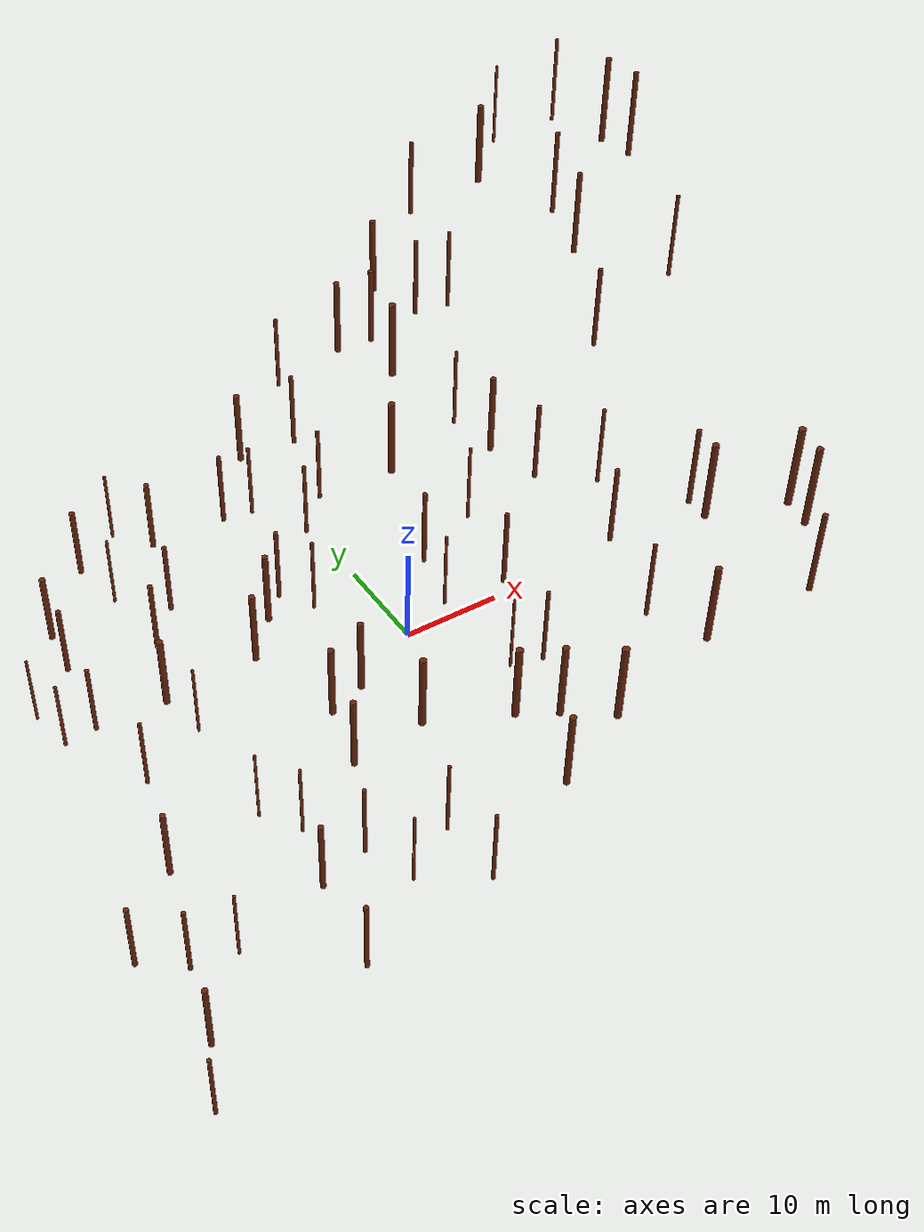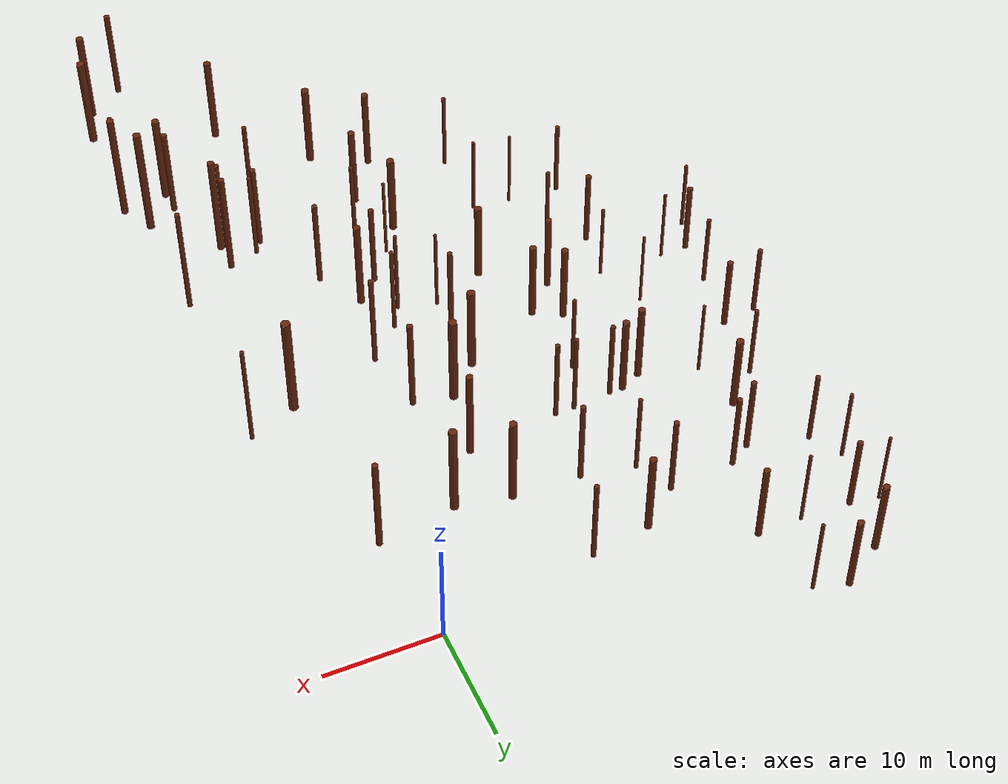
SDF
<sdf version="1.9">
 <world name="terrain_02">
  <plugin filename="gz-sim-physics-system" name="gz::sim::systems::Physics"/>
  <plugin filename="gz-sim-user-commands-system" name="gz::sim::systems::UserCommands"/>
  <plugin filename="gz-sim-scene-broadcaster-system" name="gz::sim::systems::SceneBroadcaster"/>
  <plugin filename="gz-sim-sensors-system" name="gz::sim::systems::Sensors">
   <render_engine>ogre2</render_engine>
  </plugin>
  <plugin filename="gz-sim-imu-system" name="gz::sim::systems::Imu"/>
  <plugin filename="gz-sim-navsat-system" name="gz::sim::systems::NavSat"/>
  <light type="directional" name="sun">
   <pose>0 -7000 7000 0 0 0</pose>
   <diffuse>0.9 0.88 0.82 1</diffuse>
   <specular>0 0 0 1</specular>
   <direction>0.0 0.6 -0.6</direction>
  </light>
  <scene>
   <ambient>0.45 0.48 0.55 1</ambient>
   <grid>false</grid>
   <origin_visual>false</origin_visual>
   <sky><time>10</time><sunrise>6</sunrise><sunset>20</sunset><clouds><speed>12</speed></clouds></sky>
  </scene>
  <physics name="1ms" type="ignored"><dart><collision_detector>bullet</collision_detector></dart></physics>
  <gravity>0 0 -9.8066</gravity>
  <spherical_coordinates>
   <surface_model>EARTH_WGS84</surface_model>
   <latitude_deg>46.508874731349465</latitude_deg>
   <longitude_deg>11.309725493061073</longitude_deg>
   <elevation>605.0</elevation>
  </spherical_coordinates>
  <model name="tree_0001">
   <static>true</static>
   <pose>-38.5882 -34.9558 3.0000 0 0 1.402474</pose>
   <link name="trunk">
    <visual name="trunk_visual">
     <geometry><cylinder><radius>0.1695</radius><length>7.0000</length></cylinder></geometry>
     <material>
      <ambient>0.22 0.08 0.025 1</ambient>
      <diffuse>0.40 0.14 0.04 1</diffuse>
      <specular>0.05 0.05 0.05 1</specular>
     </material>
    </visual>
    <collision name="trunk_collision">
     <geometry><cylinder><radius>0.1695</radius><length>7.0000</length></cylinder></geometry>
    </collision>
   </link>
  </model>
  <model name="tree_0002">
   <static>true</static>
   <pose>-25.6354 -35.1447 11.7345 0 0 0.187221</pose>
   <link name="trunk">
    <visual name="trunk_visual">
     <geometry><cylinder><radius>0.1959</radius><length>7.0000</length></cylinder></geometry>
     <material>
      <ambient>0.22 0.08 0.025 1</ambient>
      <diffuse>0.40 0.14 0.04 1</diffuse>
      <specular>0.05 0.05 0.05 1</specular>
     </material>
    </visual>
    <collision name="trunk_collision">
     <geometry><cylinder><radius>0.1959</radius><length>7.0000</length></cylinder></geometry>
    </collision>
   </link>
  </model>
  <model name="tree_0003">
   <static>true</static>
   <pose>-19.8354 -32.2829 14.7907 0 0 1.249334</pose>
   <link name="trunk">
    <visual name="trunk_visual">
     <geometry><cylinder><radius>0.1248</radius><length>7.0000</length></cylinder></geometry>
     <material>
      <ambient>0.22 0.08 0.025 1</ambient>
      <diffuse>0.40 0.14 0.04 1</diffuse>
      <specular>0.05 0.05 0.05 1</specular>
     </material>
    </visual>
    <collision name="trunk_collision">
     <geometry><cylinder><radius>0.1248</radius><length>7.0000</length></cylinder></geometry>
    </collision>
   </link>
  </model>
  <model name="tree_0004">
   <static>true</static>
   <pose>-15.7766 -36.6393 16.9756 0 0 3.702465</pose>
   <link name="trunk">
    <visual name="trunk_visual">
     <geometry><cylinder><radius>0.1597</radius><length>7.0000</length></cylinder></geometry>
     <material>
      <ambient>0.22 0.08 0.025 1</ambient>
      <diffuse>0.40 0.14 0.04 1</diffuse>
      <specular>0.05 0.05 0.05 1</specular>
     </material>
    </visual>
    <collision name="trunk_collision">
     <geometry><cylinder><radius>0.1597</radius><length>7.0000</length></cylinder></geometry>
    </collision>
   </link>
  </model>
  <model name="tree_0005">
   <static>true</static>
   <pose>-8.2167 -34.8226 21.1156 0 0 4.386539</pose>
   <link name="trunk">
    <visual name="trunk_visual">
     <geometry><cylinder><radius>0.2650</radius><length>7.0000</length></cylinder></geometry>
     <material>
      <ambient>0.22 0.08 0.025 1</ambient>
      <diffuse>0.40 0.14 0.04 1</diffuse>
      <specular>0.05 0.05 0.05 1</specular>
     </material>
    </visual>
    <collision name="trunk_collision">
     <geometry><cylinder><radius>0.2650</radius><length>7.0000</length></cylinder></geometry>
    </collision>
   </link>
  </model>
  <model name="tree_0006">
   <static>true</static>
   <pose>-2.9246 -33.6293 24.1662 0 0 2.114886</pose>
   <link name="trunk">
    <visual name="trunk_visual">
     <geometry><cylinder><radius>0.2923</radius><length>7.0000</length></cylinder></geometry>
     <material>
      <ambient>0.22 0.08 0.025 1</ambient>
      <diffuse>0.40 0.14 0.04 1</diffuse>
      <specular>0.05 0.05 0.05 1</specular>
     </material>
    </visual>
    <collision name="trunk_collision">
     <geometry><cylinder><radius>0.2923</radius><length>7.0000</length></cylinder></geometry>
    </collision>
   </link>
  </model>
  <model name="tree_0007">
   <static>true</static>
   <pose>4.4532 -34.1136 28.7677 0 0 3.793323</pose>
   <link name="trunk">
    <visual name="trunk_visual">
     <geometry><cylinder><radius>0.2725</radius><length>7.0000</length></cylinder></geometry>
     <material>
      <ambient>0.22 0.08 0.025 1</ambient>
      <diffuse>0.40 0.14 0.04 1</diffuse>
      <specular>0.05 0.05 0.05 1</specular>
     </material>
    </visual>
    <collision name="trunk_collision">
     <geometry><cylinder><radius>0.2725</radius><length>7.0000</length></cylinder></geometry>
    </collision>
   </link>
  </model>
  <model name="tree_0008">
   <static>true</static>
   <pose>10.8365 -37.1100 33.0162 0 0 6.114267</pose>
   <link name="trunk">
    <visual name="trunk_visual">
     <geometry><cylinder><radius>0.2165</radius><length>7.0000</length></cylinder></geometry>
     <material>
      <ambient>0.22 0.08 0.025 1</ambient>
      <diffuse>0.40 0.14 0.04 1</diffuse>
      <specular>0.05 0.05 0.05 1</specular>
     </material>
    </visual>
    <collision name="trunk_collision">
     <geometry><cylinder><radius>0.2165</radius><length>7.0000</length></cylinder></geometry>
    </collision>
   </link>
  </model>
  <model name="tree_0009">
   <static>true</static>
   <pose>13.8684 -32.8580 34.8509 0 0 3.886274</pose>
   <link name="trunk">
    <visual name="trunk_visual">
     <geometry><cylinder><radius>0.2693</radius><length>7.0000</length></cylinder></geometry>
     <material>
      <ambient>0.22 0.08 0.025 1</ambient>
      <diffuse>0.40 0.14 0.04 1</diffuse>
      <specular>0.05 0.05 0.05 1</specular>
     </material>
    </visual>
    <collision name="trunk_collision">
     <geometry><cylinder><radius>0.2693</radius><length>7.0000</length></cylinder></geometry>
    </collision>
   </link>
  </model>
  <model name="tree_0010">
   <static>true</static>
   <pose>-36.6053 -30.6144 4.5189 0 0 0.287923</pose>
   <link name="trunk">
    <visual name="trunk_visual">
     <geometry><cylinder><radius>0.2468</radius><length>7.0000</length></cylinder></geometry>
     <material>
      <ambient>0.22 0.08 0.025 1</ambient>
      <diffuse>0.40 0.14 0.04 1</diffuse>
      <specular>0.05 0.05 0.05 1</specular>
     </material>
    </visual>
    <collision name="trunk_collision">
     <geometry><cylinder><radius>0.2468</radius><length>7.0000</length></cylinder></geometry>
    </collision>
   </link>
  </model>
  <model name="tree_0011">
   <static>true</static>
   <pose>-32.0712 -26.9727 8.3033 0 0 1.462668</pose>
   <link name="trunk">
    <visual name="trunk_visual">
     <geometry><cylinder><radius>0.1344</radius><length>7.0000</length></cylinder></geometry>
     <material>
      <ambient>0.22 0.08 0.025 1</ambient>
      <diffuse>0.40 0.14 0.04 1</diffuse>
      <specular>0.05 0.05 0.05 1</specular>
     </material>
    </visual>
    <collision name="trunk_collision">
     <geometry><cylinder><radius>0.1344</radius><length>7.0000</length></cylinder></geometry>
    </collision>
   </link>
  </model>
  <model name="tree_0012">
   <static>true</static>
   <pose>-25.0001 -27.6530 12.3503 0 0 2.292308</pose>
   <link name="trunk">
    <visual name="trunk_visual">
     <geometry><cylinder><radius>0.2344</radius><length>7.0000</length></cylinder></geometry>
     <material>
      <ambient>0.22 0.08 0.025 1</ambient>
      <diffuse>0.40 0.14 0.04 1</diffuse>
      <specular>0.05 0.05 0.05 1</specular>
     </material>
    </visual>
    <collision name="trunk_collision">
     <geometry><cylinder><radius>0.2344</radius><length>7.0000</length></cylinder></geometry>
    </collision>
   </link>
  </model>
  <model name="tree_0013">
   <static>true</static>
   <pose>-21.2399 -27.6113 14.0783 0 0 5.885174</pose>
   <link name="trunk">
    <visual name="trunk_visual">
     <geometry><cylinder><radius>0.1681</radius><length>7.0000</length></cylinder></geometry>
     <material>
      <ambient>0.22 0.08 0.025 1</ambient>
      <diffuse>0.40 0.14 0.04 1</diffuse>
      <specular>0.05 0.05 0.05 1</specular>
     </material>
    </visual>
    <collision name="trunk_collision">
     <geometry><cylinder><radius>0.1681</radius><length>7.0000</length></cylinder></geometry>
    </collision>
   </link>
  </model>
  <model name="tree_0014">
   <static>true</static>
   <pose>-15.9386 -30.8077 16.6077 0 0 4.581239</pose>
   <link name="trunk">
    <visual name="trunk_visual">
     <geometry><cylinder><radius>0.1508</radius><length>7.0000</length></cylinder></geometry>
     <material>
      <ambient>0.22 0.08 0.025 1</ambient>
      <diffuse>0.40 0.14 0.04 1</diffuse>
      <specular>0.05 0.05 0.05 1</specular>
     </material>
    </visual>
    <collision name="trunk_collision">
     <geometry><cylinder><radius>0.1508</radius><length>7.0000</length></cylinder></geometry>
    </collision>
   </link>
  </model>
  <model name="tree_0015">
   <static>true</static>
   <pose>-7.2886 -26.9384 20.7216 0 0 4.021237</pose>
   <link name="trunk">
    <visual name="trunk_visual">
     <geometry><cylinder><radius>0.2981</radius><length>7.0000</length></cylinder></geometry>
     <material>
      <ambient>0.22 0.08 0.025 1</ambient>
      <diffuse>0.40 0.14 0.04 1</diffuse>
      <specular>0.05 0.05 0.05 1</specular>
     </material>
    </visual>
    <collision name="trunk_collision">
     <geometry><cylinder><radius>0.2981</radius><length>7.0000</length></cylinder></geometry>
    </collision>
   </link>
  </model>
  <model name="tree_0016">
   <static>true</static>
   <pose>-5.1459 -29.6742 22.1335 0 0 4.875751</pose>
   <link name="trunk">
    <visual name="trunk_visual">
     <geometry><cylinder><radius>0.2717</radius><length>7.0000</length></cylinder></geometry>
     <material>
      <ambient>0.22 0.08 0.025 1</ambient>
      <diffuse>0.40 0.14 0.04 1</diffuse>
      <specular>0.05 0.05 0.05 1</specular>
     </material>
    </visual>
    <collision name="trunk_collision">
     <geometry><cylinder><radius>0.2717</radius><length>7.0000</length></cylinder></geometry>
    </collision>
   </link>
  </model>
  <model name="tree_0017">
   <static>true</static>
   <pose>3.7671 -28.1035 26.8454 0 0 1.682266</pose>
   <link name="trunk">
    <visual name="trunk_visual">
     <geometry><cylinder><radius>0.1768</radius><length>7.0000</length></cylinder></geometry>
     <material>
      <ambient>0.22 0.08 0.025 1</ambient>
      <diffuse>0.40 0.14 0.04 1</diffuse>
      <specular>0.05 0.05 0.05 1</specular>
     </material>
    </visual>
    <collision name="trunk_collision">
     <geometry><cylinder><radius>0.1768</radius><length>7.0000</length></cylinder></geometry>
    </collision>
   </link>
  </model>
  <model name="tree_0018">
   <static>true</static>
   <pose>10.8616 -25.6100 31.6795 0 0 1.977179</pose>
   <link name="trunk">
    <visual name="trunk_visual">
     <geometry><cylinder><radius>0.2777</radius><length>7.0000</length></cylinder></geometry>
     <material>
      <ambient>0.22 0.08 0.025 1</ambient>
      <diffuse>0.40 0.14 0.04 1</diffuse>
      <specular>0.05 0.05 0.05 1</specular>
     </material>
    </visual>
    <collision name="trunk_collision">
     <geometry><cylinder><radius>0.2777</radius><length>7.0000</length></cylinder></geometry>
    </collision>
   </link>
  </model>
  <model name="tree_0019">
   <static>true</static>
   <pose>14.5764 -30.2732 34.6691 0 0 2.883051</pose>
   <link name="trunk">
    <visual name="trunk_visual">
     <geometry><cylinder><radius>0.2846</radius><length>7.0000</length></cylinder></geometry>
     <material>
      <ambient>0.22 0.08 0.025 1</ambient>
      <diffuse>0.40 0.14 0.04 1</diffuse>
      <specular>0.05 0.05 0.05 1</specular>
     </material>
    </visual>
    <collision name="trunk_collision">
     <geometry><cylinder><radius>0.2846</radius><length>7.0000</length></cylinder></geometry>
    </collision>
   </link>
  </model>
  <model name="tree_0020">
   <static>true</static>
   <pose>-38.4405 -21.1114 4.4851 0 0 1.650854</pose>
   <link name="trunk">
    <visual name="trunk_visual">
     <geometry><cylinder><radius>0.2210</radius><length>7.0000</length></cylinder></geometry>
     <material>
      <ambient>0.22 0.08 0.025 1</ambient>
      <diffuse>0.40 0.14 0.04 1</diffuse>
      <specular>0.05 0.05 0.05 1</specular>
     </material>
    </visual>
    <collision name="trunk_collision">
     <geometry><cylinder><radius>0.2210</radius><length>7.0000</length></cylinder></geometry>
    </collision>
   </link>
  </model>
  <model name="tree_0021">
   <static>true</static>
   <pose>-35.3000 -24.7750 6.0681 0 0 1.378033</pose>
   <link name="trunk">
    <visual name="trunk_visual">
     <geometry><cylinder><radius>0.1919</radius><length>7.0000</length></cylinder></geometry>
     <material>
      <ambient>0.22 0.08 0.025 1</ambient>
      <diffuse>0.40 0.14 0.04 1</diffuse>
      <specular>0.05 0.05 0.05 1</specular>
     </material>
    </visual>
    <collision name="trunk_collision">
     <geometry><cylinder><radius>0.1919</radius><length>7.0000</length></cylinder></geometry>
    </collision>
   </link>
  </model>
  <model name="tree_0022">
   <static>true</static>
   <pose>-23.9130 -22.6469 13.0746 0 0 0.296041</pose>
   <link name="trunk">
    <visual name="trunk_visual">
     <geometry><cylinder><radius>0.1364</radius><length>7.0000</length></cylinder></geometry>
     <material>
      <ambient>0.22 0.08 0.025 1</ambient>
      <diffuse>0.40 0.14 0.04 1</diffuse>
      <specular>0.05 0.05 0.05 1</specular>
     </material>
    </visual>
    <collision name="trunk_collision">
     <geometry><cylinder><radius>0.1364</radius><length>7.0000</length></cylinder></geometry>
    </collision>
   </link>
  </model>
  <model name="tree_0023">
   <static>true</static>
   <pose>-18.1305 -20.8233 15.6238 0 0 2.652509</pose>
   <link name="trunk">
    <visual name="trunk_visual">
     <geometry><cylinder><radius>0.2626</radius><length>7.0000</length></cylinder></geometry>
     <material>
      <ambient>0.22 0.08 0.025 1</ambient>
      <diffuse>0.40 0.14 0.04 1</diffuse>
      <specular>0.05 0.05 0.05 1</specular>
     </material>
    </visual>
    <collision name="trunk_collision">
     <geometry><cylinder><radius>0.2626</radius><length>7.0000</length></cylinder></geometry>
    </collision>
   </link>
  </model>
  <model name="tree_0024">
   <static>true</static>
   <pose>-12.4932 -21.8479 18.0424 0 0 3.324523</pose>
   <link name="trunk">
    <visual name="trunk_visual">
     <geometry><cylinder><radius>0.2993</radius><length>7.0000</length></cylinder></geometry>
     <material>
      <ambient>0.22 0.08 0.025 1</ambient>
      <diffuse>0.40 0.14 0.04 1</diffuse>
      <specular>0.05 0.05 0.05 1</specular>
     </material>
    </visual>
    <collision name="trunk_collision">
     <geometry><cylinder><radius>0.2993</radius><length>7.0000</length></cylinder></geometry>
    </collision>
   </link>
  </model>
  <model name="tree_0025">
   <static>true</static>
   <pose>-5.3000 -23.3278 21.9161 0 0 4.528429</pose>
   <link name="trunk">
    <visual name="trunk_visual">
     <geometry><cylinder><radius>0.1221</radius><length>7.0000</length></cylinder></geometry>
     <material>
      <ambient>0.22 0.08 0.025 1</ambient>
      <diffuse>0.40 0.14 0.04 1</diffuse>
      <specular>0.05 0.05 0.05 1</specular>
     </material>
    </visual>
    <collision name="trunk_collision">
     <geometry><cylinder><radius>0.1221</radius><length>7.0000</length></cylinder></geometry>
    </collision>
   </link>
  </model>
  <model name="tree_0026">
   <static>true</static>
   <pose>-3.3325 -24.8669 22.9963 0 0 4.027282</pose>
   <link name="trunk">
    <visual name="trunk_visual">
     <geometry><cylinder><radius>0.1680</radius><length>7.0000</length></cylinder></geometry>
     <material>
      <ambient>0.22 0.08 0.025 1</ambient>
      <diffuse>0.40 0.14 0.04 1</diffuse>
      <specular>0.05 0.05 0.05 1</specular>
     </material>
    </visual>
    <collision name="trunk_collision">
     <geometry><cylinder><radius>0.1680</radius><length>7.0000</length></cylinder></geometry>
    </collision>
   </link>
  </model>
  <model name="tree_0027">
   <static>true</static>
   <pose>5.3327 -21.2322 28.6359 0 0 5.993002</pose>
   <link name="trunk">
    <visual name="trunk_visual">
     <geometry><cylinder><radius>0.2017</radius><length>7.0000</length></cylinder></geometry>
     <material>
      <ambient>0.22 0.08 0.025 1</ambient>
      <diffuse>0.40 0.14 0.04 1</diffuse>
      <specular>0.05 0.05 0.05 1</specular>
     </material>
    </visual>
    <collision name="trunk_collision">
     <geometry><cylinder><radius>0.2017</radius><length>7.0000</length></cylinder></geometry>
    </collision>
   </link>
  </model>
  <model name="tree_0028">
   <static>true</static>
   <pose>10.8117 -23.7099 31.8290 0 0 1.122503</pose>
   <link name="trunk">
    <visual name="trunk_visual">
     <geometry><cylinder><radius>0.2101</radius><length>7.0000</length></cylinder></geometry>
     <material>
      <ambient>0.22 0.08 0.025 1</ambient>
      <diffuse>0.40 0.14 0.04 1</diffuse>
      <specular>0.05 0.05 0.05 1</specular>
     </material>
    </visual>
    <collision name="trunk_collision">
     <geometry><cylinder><radius>0.2101</radius><length>7.0000</length></cylinder></geometry>
    </collision>
   </link>
  </model>
  <model name="tree_0029">
   <static>true</static>
   <pose>-33.1923 -17.3385 8.2768 0 0 3.389018</pose>
   <link name="trunk">
    <visual name="trunk_visual">
     <geometry><cylinder><radius>0.2573</radius><length>7.0000</length></cylinder></geometry>
     <material>
      <ambient>0.22 0.08 0.025 1</ambient>
      <diffuse>0.40 0.14 0.04 1</diffuse>
      <specular>0.05 0.05 0.05 1</specular>
     </material>
    </visual>
    <collision name="trunk_collision">
     <geometry><cylinder><radius>0.2573</radius><length>7.0000</length></cylinder></geometry>
    </collision>
   </link>
  </model>
  <model name="tree_0030">
   <static>true</static>
   <pose>-25.8601 -19.0292 12.3881 0 0 2.036733</pose>
   <link name="trunk">
    <visual name="trunk_visual">
     <geometry><cylinder><radius>0.1201</radius><length>7.0000</length></cylinder></geometry>
     <material>
      <ambient>0.22 0.08 0.025 1</ambient>
      <diffuse>0.40 0.14 0.04 1</diffuse>
      <specular>0.05 0.05 0.05 1</specular>
     </material>
    </visual>
    <collision name="trunk_collision">
     <geometry><cylinder><radius>0.1201</radius><length>7.0000</length></cylinder></geometry>
    </collision>
   </link>
  </model>
  <model name="tree_0031">
   <static>true</static>
   <pose>-17.3000 -16.0483 16.7311 0 0 5.225509</pose>
   <link name="trunk">
    <visual name="trunk_visual">
     <geometry><cylinder><radius>0.2782</radius><length>7.0000</length></cylinder></geometry>
     <material>
      <ambient>0.22 0.08 0.025 1</ambient>
      <diffuse>0.40 0.14 0.04 1</diffuse>
      <specular>0.05 0.05 0.05 1</specular>
     </material>
    </visual>
    <collision name="trunk_collision">
     <geometry><cylinder><radius>0.2782</radius><length>7.0000</length></cylinder></geometry>
    </collision>
   </link>
  </model>
  <model name="tree_0032">
   <static>true</static>
   <pose>-14.5443 -15.9637 18.1004 0 0 5.949859</pose>
   <link name="trunk">
    <visual name="trunk_visual">
     <geometry><cylinder><radius>0.2780</radius><length>7.0000</length></cylinder></geometry>
     <material>
      <ambient>0.22 0.08 0.025 1</ambient>
      <diffuse>0.40 0.14 0.04 1</diffuse>
      <specular>0.05 0.05 0.05 1</specular>
     </material>
    </visual>
    <collision name="trunk_collision">
     <geometry><cylinder><radius>0.2780</radius><length>7.0000</length></cylinder></geometry>
    </collision>
   </link>
  </model>
  <model name="tree_0033">
   <static>true</static>
   <pose>-6.3188 -15.4273 22.8901 0 0 4.779004</pose>
   <link name="trunk">
    <visual name="trunk_visual">
     <geometry><cylinder><radius>0.1325</radius><length>7.0000</length></cylinder></geometry>
     <material>
      <ambient>0.22 0.08 0.025 1</ambient>
      <diffuse>0.40 0.14 0.04 1</diffuse>
      <specular>0.05 0.05 0.05 1</specular>
     </material>
    </visual>
    <collision name="trunk_collision">
     <geometry><cylinder><radius>0.1325</radius><length>7.0000</length></cylinder></geometry>
    </collision>
   </link>
  </model>
  <model name="tree_0034">
   <static>true</static>
   <pose>-2.1959 -17.6533 24.9886 0 0 3.454518</pose>
   <link name="trunk">
    <visual name="trunk_visual">
     <geometry><cylinder><radius>0.2056</radius><length>7.0000</length></cylinder></geometry>
     <material>
      <ambient>0.22 0.08 0.025 1</ambient>
      <diffuse>0.40 0.14 0.04 1</diffuse>
      <specular>0.05 0.05 0.05 1</specular>
     </material>
    </visual>
    <collision name="trunk_collision">
     <geometry><cylinder><radius>0.2056</radius><length>7.0000</length></cylinder></geometry>
    </collision>
   </link>
  </model>
  <model name="tree_0035">
   <static>true</static>
   <pose>3.3166 -13.6100 30.6855 0 0 1.330767</pose>
   <link name="trunk">
    <visual name="trunk_visual">
     <geometry><cylinder><radius>0.1962</radius><length>7.0000</length></cylinder></geometry>
     <material>
      <ambient>0.22 0.08 0.025 1</ambient>
      <diffuse>0.40 0.14 0.04 1</diffuse>
      <specular>0.05 0.05 0.05 1</specular>
     </material>
    </visual>
    <collision name="trunk_collision">
     <geometry><cylinder><radius>0.1962</radius><length>7.0000</length></cylinder></geometry>
    </collision>
   </link>
  </model>
  <model name="tree_0036">
   <static>true</static>
   <pose>6.7000 -17.4009 31.3919 0 0 1.958571</pose>
   <link name="trunk">
    <visual name="trunk_visual">
     <geometry><cylinder><radius>0.1562</radius><length>7.0000</length></cylinder></geometry>
     <material>
      <ambient>0.22 0.08 0.025 1</ambient>
      <diffuse>0.40 0.14 0.04 1</diffuse>
      <specular>0.05 0.05 0.05 1</specular>
     </material>
    </visual>
    <collision name="trunk_collision">
     <geometry><cylinder><radius>0.1562</radius><length>7.0000</length></cylinder></geometry>
    </collision>
   </link>
  </model>
  <model name="tree_0037">
   <static>true</static>
   <pose>-31.2660 -9.6267 10.4135 0 0 3.696453</pose>
   <link name="trunk">
    <visual name="trunk_visual">
     <geometry><cylinder><radius>0.1809</radius><length>7.0000</length></cylinder></geometry>
     <material>
      <ambient>0.22 0.08 0.025 1</ambient>
      <diffuse>0.40 0.14 0.04 1</diffuse>
      <specular>0.05 0.05 0.05 1</specular>
     </material>
    </visual>
    <collision name="trunk_collision">
     <geometry><cylinder><radius>0.1809</radius><length>7.0000</length></cylinder></geometry>
    </collision>
   </link>
  </model>
  <model name="tree_0038">
   <static>true</static>
   <pose>-26.1242 -9.2104 13.3301 0 0 3.965337</pose>
   <link name="trunk">
    <visual name="trunk_visual">
     <geometry><cylinder><radius>0.1328</radius><length>7.0000</length></cylinder></geometry>
     <material>
      <ambient>0.22 0.08 0.025 1</ambient>
      <diffuse>0.40 0.14 0.04 1</diffuse>
      <specular>0.05 0.05 0.05 1</specular>
     </material>
    </visual>
    <collision name="trunk_collision">
     <geometry><cylinder><radius>0.1328</radius><length>7.0000</length></cylinder></geometry>
    </collision>
   </link>
  </model>
  <model name="tree_0039">
   <static>true</static>
   <pose>-19.7270 -7.6100 16.9255 0 0 0.445210</pose>
   <link name="trunk">
    <visual name="trunk_visual">
     <geometry><cylinder><radius>0.2747</radius><length>7.0000</length></cylinder></geometry>
     <material>
      <ambient>0.22 0.08 0.025 1</ambient>
      <diffuse>0.40 0.14 0.04 1</diffuse>
      <specular>0.05 0.05 0.05 1</specular>
     </material>
    </visual>
    <collision name="trunk_collision">
     <geometry><cylinder><radius>0.2747</radius><length>7.0000</length></cylinder></geometry>
    </collision>
   </link>
  </model>
  <model name="tree_0040">
   <static>true</static>
   <pose>-14.0761 -7.6445 20.0691 0 0 0.831340</pose>
   <link name="trunk">
    <visual name="trunk_visual">
     <geometry><cylinder><radius>0.1586</radius><length>7.0000</length></cylinder></geometry>
     <material>
      <ambient>0.22 0.08 0.025 1</ambient>
      <diffuse>0.40 0.14 0.04 1</diffuse>
      <specular>0.05 0.05 0.05 1</specular>
     </material>
    </visual>
    <collision name="trunk_collision">
     <geometry><cylinder><radius>0.1586</radius><length>7.0000</length></cylinder></geometry>
    </collision>
   </link>
  </model>
  <model name="tree_0041">
   <static>true</static>
   <pose>-5.9085 -11.6357 24.4364 0 0 4.929909</pose>
   <link name="trunk">
    <visual name="trunk_visual">
     <geometry><cylinder><radius>0.2051</radius><length>7.0000</length></cylinder></geometry>
     <material>
      <ambient>0.22 0.08 0.025 1</ambient>
      <diffuse>0.40 0.14 0.04 1</diffuse>
      <specular>0.05 0.05 0.05 1</specular>
     </material>
    </visual>
    <collision name="trunk_collision">
     <geometry><cylinder><radius>0.2051</radius><length>7.0000</length></cylinder></geometry>
    </collision>
   </link>
  </model>
  <model name="tree_0042">
   <static>true</static>
   <pose>-1.8405 -11.8260 27.4383 0 0 2.708374</pose>
   <link name="trunk">
    <visual name="trunk_visual">
     <geometry><cylinder><radius>0.1374</radius><length>7.0000</length></cylinder></geometry>
     <material>
      <ambient>0.22 0.08 0.025 1</ambient>
      <diffuse>0.40 0.14 0.04 1</diffuse>
      <specular>0.05 0.05 0.05 1</specular>
     </material>
    </visual>
    <collision name="trunk_collision">
     <geometry><cylinder><radius>0.1374</radius><length>7.0000</length></cylinder></geometry>
    </collision>
   </link>
  </model>
  <model name="tree_0043">
   <static>true</static>
   <pose>1.7100 -9.5736 31.4714 0 0 4.230874</pose>
   <link name="trunk">
    <visual name="trunk_visual">
     <geometry><cylinder><radius>0.2512</radius><length>7.0000</length></cylinder></geometry>
     <material>
      <ambient>0.22 0.08 0.025 1</ambient>
      <diffuse>0.40 0.14 0.04 1</diffuse>
      <specular>0.05 0.05 0.05 1</specular>
     </material>
    </visual>
    <collision name="trunk_collision">
     <geometry><cylinder><radius>0.2512</radius><length>7.0000</length></cylinder></geometry>
    </collision>
   </link>
  </model>
  <model name="tree_0044">
   <static>true</static>
   <pose>10.6059 -10.7004 39.1684 0 0 2.131901</pose>
   <link name="trunk">
    <visual name="trunk_visual">
     <geometry><cylinder><radius>0.1925</radius><length>7.0000</length></cylinder></geometry>
     <material>
      <ambient>0.22 0.08 0.025 1</ambient>
      <diffuse>0.40 0.14 0.04 1</diffuse>
      <specular>0.05 0.05 0.05 1</specular>
     </material>
    </visual>
    <collision name="trunk_collision">
     <geometry><cylinder><radius>0.1925</radius><length>7.0000</length></cylinder></geometry>
    </collision>
   </link>
  </model>
  <model name="tree_0045">
   <static>true</static>
   <pose>16.6762 -11.7651 44.2585 0 0 2.818722</pose>
   <link name="trunk">
    <visual name="trunk_visual">
     <geometry><cylinder><radius>0.1542</radius><length>7.0000</length></cylinder></geometry>
     <material>
      <ambient>0.22 0.08 0.025 1</ambient>
      <diffuse>0.40 0.14 0.04 1</diffuse>
      <specular>0.05 0.05 0.05 1</specular>
     </material>
    </visual>
    <collision name="trunk_collision">
     <geometry><cylinder><radius>0.1542</radius><length>7.0000</length></cylinder></geometry>
    </collision>
   </link>
  </model>
  <model name="tree_0046">
   <static>true</static>
   <pose>-32.2945 -1.6100 10.0831 0 0 5.412016</pose>
   <link name="trunk">
    <visual name="trunk_visual">
     <geometry><cylinder><radius>0.1998</radius><length>7.0000</length></cylinder></geometry>
     <material>
      <ambient>0.22 0.08 0.025 1</ambient>
      <diffuse>0.40 0.14 0.04 1</diffuse>
      <specular>0.05 0.05 0.05 1</specular>
     </material>
    </visual>
    <collision name="trunk_collision">
     <geometry><cylinder><radius>0.1998</radius><length>7.0000</length></cylinder></geometry>
    </collision>
   </link>
  </model>
  <model name="tree_0047">
   <static>true</static>
   <pose>-26.9125 -4.8104 13.2591 0 0 5.252916</pose>
   <link name="trunk">
    <visual name="trunk_visual">
     <geometry><cylinder><radius>0.2999</radius><length>7.0000</length></cylinder></geometry>
     <material>
      <ambient>0.22 0.08 0.025 1</ambient>
      <diffuse>0.40 0.14 0.04 1</diffuse>
      <specular>0.05 0.05 0.05 1</specular>
     </material>
    </visual>
    <collision name="trunk_collision">
     <geometry><cylinder><radius>0.2999</radius><length>7.0000</length></cylinder></geometry>
    </collision>
   </link>
  </model>
  <model name="tree_0048">
   <static>true</static>
   <pose>-17.3000 -5.4943 18.4860 0 0 1.044964</pose>
   <link name="trunk">
    <visual name="trunk_visual">
     <geometry><cylinder><radius>0.2728</radius><length>7.0000</length></cylinder></geometry>
     <material>
      <ambient>0.22 0.08 0.025 1</ambient>
      <diffuse>0.40 0.14 0.04 1</diffuse>
      <specular>0.05 0.05 0.05 1</specular>
     </material>
    </visual>
    <collision name="trunk_collision">
     <geometry><cylinder><radius>0.2728</radius><length>7.0000</length></cylinder></geometry>
    </collision>
   </link>
  </model>
  <model name="tree_0049">
   <static>true</static>
   <pose>-15.6814 -4.4850 19.6154 0 0 0.368417</pose>
   <link name="trunk">
    <visual name="trunk_visual">
     <geometry><cylinder><radius>0.1922</radius><length>7.0000</length></cylinder></geometry>
     <material>
      <ambient>0.22 0.08 0.025 1</ambient>
      <diffuse>0.40 0.14 0.04 1</diffuse>
      <specular>0.05 0.05 0.05 1</specular>
     </material>
    </visual>
    <collision name="trunk_collision">
     <geometry><cylinder><radius>0.1922</radius><length>7.0000</length></cylinder></geometry>
    </collision>
   </link>
  </model>
  <model name="tree_0050">
   <static>true</static>
   <pose>-11.3000 -1.6100 22.7024 0 0 4.926461</pose>
   <link name="trunk">
    <visual name="trunk_visual">
     <geometry><cylinder><radius>0.1677</radius><length>7.0000</length></cylinder></geometry>
     <material>
      <ambient>0.22 0.08 0.025 1</ambient>
      <diffuse>0.40 0.14 0.04 1</diffuse>
      <specular>0.05 0.05 0.05 1</specular>
     </material>
    </visual>
    <collision name="trunk_collision">
     <geometry><cylinder><radius>0.1677</radius><length>7.0000</length></cylinder></geometry>
    </collision>
   </link>
  </model>
  <model name="tree_0051">
   <static>true</static>
   <pose>-4.3142 -4.0249 27.8948 0 0 6.254425</pose>
   <link name="trunk">
    <visual name="trunk_visual">
     <geometry><cylinder><radius>0.2923</radius><length>7.0000</length></cylinder></geometry>
     <material>
      <ambient>0.22 0.08 0.025 1</ambient>
      <diffuse>0.40 0.14 0.04 1</diffuse>
      <specular>0.05 0.05 0.05 1</specular>
     </material>
    </visual>
    <collision name="trunk_collision">
     <geometry><cylinder><radius>0.2923</radius><length>7.0000</length></cylinder></geometry>
    </collision>
   </link>
  </model>
  <model name="tree_0052">
   <static>true</static>
   <pose>0.7094 -5.7030 32.1003 0 0 1.864270</pose>
   <link name="trunk">
    <visual name="trunk_visual">
     <geometry><cylinder><radius>0.1479</radius><length>7.0000</length></cylinder></geometry>
     <material>
      <ambient>0.22 0.08 0.025 1</ambient>
      <diffuse>0.40 0.14 0.04 1</diffuse>
      <specular>0.05 0.05 0.05 1</specular>
     </material>
    </visual>
    <collision name="trunk_collision">
     <geometry><cylinder><radius>0.1479</radius><length>7.0000</length></cylinder></geometry>
    </collision>
   </link>
  </model>
  <model name="tree_0053">
   <static>true</static>
   <pose>12.2807 -5.1240 44.3408 0 0 4.699669</pose>
   <link name="trunk">
    <visual name="trunk_visual">
     <geometry><cylinder><radius>0.2176</radius><length>7.0000</length></cylinder></geometry>
     <material>
      <ambient>0.22 0.08 0.025 1</ambient>
      <diffuse>0.40 0.14 0.04 1</diffuse>
      <specular>0.05 0.05 0.05 1</specular>
     </material>
    </visual>
    <collision name="trunk_collision">
     <geometry><cylinder><radius>0.2176</radius><length>7.0000</length></cylinder></geometry>
    </collision>
   </link>
  </model>
  <model name="tree_0054">
   <static>true</static>
   <pose>18.1804 -3.6787 50.6803 0 0 5.357797</pose>
   <link name="trunk">
    <visual name="trunk_visual">
     <geometry><cylinder><radius>0.2105</radius><length>7.0000</length></cylinder></geometry>
     <material>
      <ambient>0.22 0.08 0.025 1</ambient>
      <diffuse>0.40 0.14 0.04 1</diffuse>
      <specular>0.05 0.05 0.05 1</specular>
     </material>
    </visual>
    <collision name="trunk_collision">
     <geometry><cylinder><radius>0.2105</radius><length>7.0000</length></cylinder></geometry>
    </collision>
   </link>
  </model>
  <model name="tree_0055">
   <static>true</static>
   <pose>-35.5037 4.3900 7.6959 0 0 1.167573</pose>
   <link name="trunk">
    <visual name="trunk_visual">
     <geometry><cylinder><radius>0.1344</radius><length>7.0000</length></cylinder></geometry>
     <material>
      <ambient>0.22 0.08 0.025 1</ambient>
      <diffuse>0.40 0.14 0.04 1</diffuse>
      <specular>0.05 0.05 0.05 1</specular>
     </material>
    </visual>
    <collision name="trunk_collision">
     <geometry><cylinder><radius>0.1344</radius><length>7.0000</length></cylinder></geometry>
    </collision>
   </link>
  </model>
  <model name="tree_0056">
   <static>true</static>
   <pose>-34.7804 -0.2965 8.2779 0 0 0.753270</pose>
   <link name="trunk">
    <visual name="trunk_visual">
     <geometry><cylinder><radius>0.1623</radius><length>7.0000</length></cylinder></geometry>
     <material>
      <ambient>0.22 0.08 0.025 1</ambient>
      <diffuse>0.40 0.14 0.04 1</diffuse>
      <specular>0.05 0.05 0.05 1</specular>
     </material>
    </visual>
    <collision name="trunk_collision">
     <geometry><cylinder><radius>0.1623</radius><length>7.0000</length></cylinder></geometry>
    </collision>
   </link>
  </model>
  <model name="tree_0057">
   <static>true</static>
   <pose>-25.1396 0.4336 14.4230 0 0 3.891689</pose>
   <link name="trunk">
    <visual name="trunk_visual">
     <geometry><cylinder><radius>0.2270</radius><length>7.0000</length></cylinder></geometry>
     <material>
      <ambient>0.22 0.08 0.025 1</ambient>
      <diffuse>0.40 0.14 0.04 1</diffuse>
      <specular>0.05 0.05 0.05 1</specular>
     </material>
    </visual>
    <collision name="trunk_collision">
     <geometry><cylinder><radius>0.2270</radius><length>7.0000</length></cylinder></geometry>
    </collision>
   </link>
  </model>
  <model name="tree_0058">
   <static>true</static>
   <pose>-22.6139 2.6768 15.8873 0 0 5.872933</pose>
   <link name="trunk">
    <visual name="trunk_visual">
     <geometry><cylinder><radius>0.2141</radius><length>7.0000</length></cylinder></geometry>
     <material>
      <ambient>0.22 0.08 0.025 1</ambient>
      <diffuse>0.40 0.14 0.04 1</diffuse>
      <specular>0.05 0.05 0.05 1</specular>
     </material>
    </visual>
    <collision name="trunk_collision">
     <geometry><cylinder><radius>0.2141</radius><length>7.0000</length></cylinder></geometry>
    </collision>
   </link>
  </model>
  <model name="tree_0059">
   <static>true</static>
   <pose>-13.4002 4.3900 21.5125 0 0 2.486796</pose>
   <link name="trunk">
    <visual name="trunk_visual">
     <geometry><cylinder><radius>0.1630</radius><length>7.0000</length></cylinder></geometry>
     <material>
      <ambient>0.22 0.08 0.025 1</ambient>
      <diffuse>0.40 0.14 0.04 1</diffuse>
      <specular>0.05 0.05 0.05 1</specular>
     </material>
    </visual>
    <collision name="trunk_collision">
     <geometry><cylinder><radius>0.1630</radius><length>7.0000</length></cylinder></geometry>
    </collision>
   </link>
  </model>
  <model name="tree_0060">
   <static>true</static>
   <pose>-9.0980 -0.0988 24.4527 0 0 4.724104</pose>
   <link name="trunk">
    <visual name="trunk_visual">
     <geometry><cylinder><radius>0.1769</radius><length>7.0000</length></cylinder></geometry>
     <material>
      <ambient>0.22 0.08 0.025 1</ambient>
      <diffuse>0.40 0.14 0.04 1</diffuse>
      <specular>0.05 0.05 0.05 1</specular>
     </material>
    </visual>
    <collision name="trunk_collision">
     <geometry><cylinder><radius>0.1769</radius><length>7.0000</length></cylinder></geometry>
    </collision>
   </link>
  </model>
  <model name="tree_0061">
   <static>true</static>
   <pose>-0.3116 2.3648 32.4781 0 0 6.258659</pose>
   <link name="trunk">
    <visual name="trunk_visual">
     <geometry><cylinder><radius>0.2997</radius><length>7.0000</length></cylinder></geometry>
     <material>
      <ambient>0.22 0.08 0.025 1</ambient>
      <diffuse>0.40 0.14 0.04 1</diffuse>
      <specular>0.05 0.05 0.05 1</specular>
     </material>
    </visual>
    <collision name="trunk_collision">
     <geometry><cylinder><radius>0.2997</radius><length>7.0000</length></cylinder></geometry>
    </collision>
   </link>
  </model>
  <model name="tree_0062">
   <static>true</static>
   <pose>4.9407 2.0052 37.8251 0 0 5.863842</pose>
   <link name="trunk">
    <visual name="trunk_visual">
     <geometry><cylinder><radius>0.1677</radius><length>7.0000</length></cylinder></geometry>
     <material>
      <ambient>0.22 0.08 0.025 1</ambient>
      <diffuse>0.40 0.14 0.04 1</diffuse>
      <specular>0.05 0.05 0.05 1</specular>
     </material>
    </visual>
    <collision name="trunk_collision">
     <geometry><cylinder><radius>0.1677</radius><length>7.0000</length></cylinder></geometry>
    </collision>
   </link>
  </model>
  <model name="tree_0063">
   <static>true</static>
   <pose>12.7000 -1.4090 46.0859 0 0 0.991153</pose>
   <link name="trunk">
    <visual name="trunk_visual">
     <geometry><cylinder><radius>0.1865</radius><length>7.0000</length></cylinder></geometry>
     <material>
      <ambient>0.22 0.08 0.025 1</ambient>
      <diffuse>0.40 0.14 0.04 1</diffuse>
      <specular>0.05 0.05 0.05 1</specular>
     </material>
    </visual>
    <collision name="trunk_collision">
     <geometry><cylinder><radius>0.1865</radius><length>7.0000</length></cylinder></geometry>
    </collision>
   </link>
  </model>
  <model name="tree_0064">
   <static>true</static>
   <pose>17.2664 -1.3069 51.1181 0 0 6.202968</pose>
   <link name="trunk">
    <visual name="trunk_visual">
     <geometry><cylinder><radius>0.2301</radius><length>7.0000</length></cylinder></geometry>
     <material>
      <ambient>0.22 0.08 0.025 1</ambient>
      <diffuse>0.40 0.14 0.04 1</diffuse>
      <specular>0.05 0.05 0.05 1</specular>
     </material>
    </visual>
    <collision name="trunk_collision">
     <geometry><cylinder><radius>0.2301</radius><length>7.0000</length></cylinder></geometry>
    </collision>
   </link>
  </model>
  <model name="tree_0065">
   <static>true</static>
   <pose>-31.6096 5.8507 10.4108 0 0 5.899471</pose>
   <link name="trunk">
    <visual name="trunk_visual">
     <geometry><cylinder><radius>0.2394</radius><length>7.0000</length></cylinder></geometry>
     <material>
      <ambient>0.22 0.08 0.025 1</ambient>
      <diffuse>0.40 0.14 0.04 1</diffuse>
      <specular>0.05 0.05 0.05 1</specular>
     </material>
    </visual>
    <collision name="trunk_collision">
     <geometry><cylinder><radius>0.2394</radius><length>7.0000</length></cylinder></geometry>
    </collision>
   </link>
  </model>
  <model name="tree_0066">
   <static>true</static>
   <pose>-25.6416 8.1301 13.9347 0 0 3.476007</pose>
   <link name="trunk">
    <visual name="trunk_visual">
     <geometry><cylinder><radius>0.1393</radius><length>7.0000</length></cylinder></geometry>
     <material>
      <ambient>0.22 0.08 0.025 1</ambient>
      <diffuse>0.40 0.14 0.04 1</diffuse>
      <specular>0.05 0.05 0.05 1</specular>
     </material>
    </visual>
    <collision name="trunk_collision">
     <geometry><cylinder><radius>0.1393</radius><length>7.0000</length></cylinder></geometry>
    </collision>
   </link>
  </model>
  <model name="tree_0067">
   <static>true</static>
   <pose>-20.6814 10.0885 16.7413 0 0 1.279240</pose>
   <link name="trunk">
    <visual name="trunk_visual">
     <geometry><cylinder><radius>0.2492</radius><length>7.0000</length></cylinder></geometry>
     <material>
      <ambient>0.22 0.08 0.025 1</ambient>
      <diffuse>0.40 0.14 0.04 1</diffuse>
      <specular>0.05 0.05 0.05 1</specular>
     </material>
    </visual>
    <collision name="trunk_collision">
     <geometry><cylinder><radius>0.2492</radius><length>7.0000</length></cylinder></geometry>
    </collision>
   </link>
  </model>
  <model name="tree_0068">
   <static>true</static>
   <pose>-15.3412 6.2204 20.1536 0 0 5.688397</pose>
   <link name="trunk">
    <visual name="trunk_visual">
     <geometry><cylinder><radius>0.2079</radius><length>7.0000</length></cylinder></geometry>
     <material>
      <ambient>0.22 0.08 0.025 1</ambient>
      <diffuse>0.40 0.14 0.04 1</diffuse>
      <specular>0.05 0.05 0.05 1</specular>
     </material>
    </visual>
    <collision name="trunk_collision">
     <geometry><cylinder><radius>0.2079</radius><length>7.0000</length></cylinder></geometry>
    </collision>
   </link>
  </model>
  <model name="tree_0069">
   <static>true</static>
   <pose>-7.8002 6.6655 25.4528 0 0 1.738433</pose>
   <link name="trunk">
    <visual name="trunk_visual">
     <geometry><cylinder><radius>0.1962</radius><length>7.0000</length></cylinder></geometry>
     <material>
      <ambient>0.22 0.08 0.025 1</ambient>
      <diffuse>0.40 0.14 0.04 1</diffuse>
      <specular>0.05 0.05 0.05 1</specular>
     </material>
    </visual>
    <collision name="trunk_collision">
     <geometry><cylinder><radius>0.1962</radius><length>7.0000</length></cylinder></geometry>
    </collision>
   </link>
  </model>
  <model name="tree_0070">
   <static>true</static>
   <pose>0.7000 7.4665 32.7186 0 0 1.645913</pose>
   <link name="trunk">
    <visual name="trunk_visual">
     <geometry><cylinder><radius>0.2347</radius><length>7.0000</length></cylinder></geometry>
     <material>
      <ambient>0.22 0.08 0.025 1</ambient>
      <diffuse>0.40 0.14 0.04 1</diffuse>
      <specular>0.05 0.05 0.05 1</specular>
     </material>
    </visual>
    <collision name="trunk_collision">
     <geometry><cylinder><radius>0.2347</radius><length>7.0000</length></cylinder></geometry>
    </collision>
   </link>
  </model>
  <model name="tree_0071">
   <static>true</static>
   <pose>3.5605 4.8605 35.9726 0 0 0.060757</pose>
   <link name="trunk">
    <visual name="trunk_visual">
     <geometry><cylinder><radius>0.1970</radius><length>7.0000</length></cylinder></geometry>
     <material>
      <ambient>0.22 0.08 0.025 1</ambient>
      <diffuse>0.40 0.14 0.04 1</diffuse>
      <specular>0.05 0.05 0.05 1</specular>
     </material>
    </visual>
    <collision name="trunk_collision">
     <geometry><cylinder><radius>0.1970</radius><length>7.0000</length></cylinder></geometry>
    </collision>
   </link>
  </model>
  <model name="tree_0072">
   <static>true</static>
   <pose>12.7000 9.2769 43.8809 0 0 3.428045</pose>
   <link name="trunk">
    <visual name="trunk_visual">
     <geometry><cylinder><radius>0.2827</radius><length>7.0000</length></cylinder></geometry>
     <material>
      <ambient>0.22 0.08 0.025 1</ambient>
      <diffuse>0.40 0.14 0.04 1</diffuse>
      <specular>0.05 0.05 0.05 1</specular>
     </material>
    </visual>
    <collision name="trunk_collision">
     <geometry><cylinder><radius>0.2827</radius><length>7.0000</length></cylinder></geometry>
    </collision>
   </link>
  </model>
  <model name="tree_0073">
   <static>true</static>
   <pose>17.0398 5.1112 50.2852 0 0 0.800764</pose>
   <link name="trunk">
    <visual name="trunk_visual">
     <geometry><cylinder><radius>0.1467</radius><length>7.0000</length></cylinder></geometry>
     <material>
      <ambient>0.22 0.08 0.025 1</ambient>
      <diffuse>0.40 0.14 0.04 1</diffuse>
      <specular>0.05 0.05 0.05 1</specular>
     </material>
    </visual>
    <collision name="trunk_collision">
     <geometry><cylinder><radius>0.1467</radius><length>7.0000</length></cylinder></geometry>
    </collision>
   </link>
  </model>
  <model name="tree_0074">
   <static>true</static>
   <pose>-31.1653 10.3900 10.4067 0 0 1.319950</pose>
   <link name="trunk">
    <visual name="trunk_visual">
     <geometry><cylinder><radius>0.2818</radius><length>7.0000</length></cylinder></geometry>
     <material>
      <ambient>0.22 0.08 0.025 1</ambient>
      <diffuse>0.40 0.14 0.04 1</diffuse>
      <specular>0.05 0.05 0.05 1</specular>
     </material>
    </visual>
    <collision name="trunk_collision">
     <geometry><cylinder><radius>0.2818</radius><length>7.0000</length></cylinder></geometry>
    </collision>
   </link>
  </model>
  <model name="tree_0075">
   <static>true</static>
   <pose>-26.2972 14.3215 13.0114 0 0 5.555182</pose>
   <link name="trunk">
    <visual name="trunk_visual">
     <geometry><cylinder><radius>0.2604</radius><length>7.0000</length></cylinder></geometry>
     <material>
      <ambient>0.22 0.08 0.025 1</ambient>
      <diffuse>0.40 0.14 0.04 1</diffuse>
      <specular>0.05 0.05 0.05 1</specular>
     </material>
    </visual>
    <collision name="trunk_collision">
     <geometry><cylinder><radius>0.2604</radius><length>7.0000</length></cylinder></geometry>
    </collision>
   </link>
  </model>
  <model name="tree_0076">
   <static>true</static>
   <pose>-22.6166 14.9352 15.1535 0 0 5.842615</pose>
   <link name="trunk">
    <visual name="trunk_visual">
     <geometry><cylinder><radius>0.1478</radius><length>7.0000</length></cylinder></geometry>
     <material>
      <ambient>0.22 0.08 0.025 1</ambient>
      <diffuse>0.40 0.14 0.04 1</diffuse>
      <specular>0.05 0.05 0.05 1</specular>
     </material>
    </visual>
    <collision name="trunk_collision">
     <geometry><cylinder><radius>0.1478</radius><length>7.0000</length></cylinder></geometry>
    </collision>
   </link>
  </model>
  <model name="tree_0077">
   <static>true</static>
   <pose>-11.3000 10.3900 22.4794 0 0 5.538101</pose>
   <link name="trunk">
    <visual name="trunk_visual">
     <geometry><cylinder><radius>0.2659</radius><length>7.0000</length></cylinder></geometry>
     <material>
      <ambient>0.22 0.08 0.025 1</ambient>
      <diffuse>0.40 0.14 0.04 1</diffuse>
      <specular>0.05 0.05 0.05 1</specular>
     </material>
    </visual>
    <collision name="trunk_collision">
     <geometry><cylinder><radius>0.2659</radius><length>7.0000</length></cylinder></geometry>
    </collision>
   </link>
  </model>
  <model name="tree_0078">
   <static>true</static>
   <pose>-5.3000 13.8967 26.2766 0 0 5.848489</pose>
   <link name="trunk">
    <visual name="trunk_visual">
     <geometry><cylinder><radius>0.1798</radius><length>7.0000</length></cylinder></geometry>
     <material>
      <ambient>0.22 0.08 0.025 1</ambient>
      <diffuse>0.40 0.14 0.04 1</diffuse>
      <specular>0.05 0.05 0.05 1</specular>
     </material>
    </visual>
    <collision name="trunk_collision">
     <geometry><cylinder><radius>0.1798</radius><length>7.0000</length></cylinder></geometry>
    </collision>
   </link>
  </model>
  <model name="tree_0079">
   <static>true</static>
   <pose>-1.0121 10.3900 30.5345 0 0 1.676390</pose>
   <link name="trunk">
    <visual name="trunk_visual">
     <geometry><cylinder><radius>0.2659</radius><length>7.0000</length></cylinder></geometry>
     <material>
      <ambient>0.22 0.08 0.025 1</ambient>
      <diffuse>0.40 0.14 0.04 1</diffuse>
      <specular>0.05 0.05 0.05 1</specular>
     </material>
    </visual>
    <collision name="trunk_collision">
     <geometry><cylinder><radius>0.2659</radius><length>7.0000</length></cylinder></geometry>
    </collision>
   </link>
  </model>
  <model name="tree_0080">
   <static>true</static>
   <pose>3.9226 12.4596 34.0708 0 0 5.394701</pose>
   <link name="trunk">
    <visual name="trunk_visual">
     <geometry><cylinder><radius>0.2770</radius><length>7.0000</length></cylinder></geometry>
     <material>
      <ambient>0.22 0.08 0.025 1</ambient>
      <diffuse>0.40 0.14 0.04 1</diffuse>
      <specular>0.05 0.05 0.05 1</specular>
     </material>
    </visual>
    <collision name="trunk_collision">
     <geometry><cylinder><radius>0.2770</radius><length>7.0000</length></cylinder></geometry>
    </collision>
   </link>
  </model>
  <model name="tree_0081">
   <static>true</static>
   <pose>10.3348 16.3900 38.0449 0 0 1.917571</pose>
   <link name="trunk">
    <visual name="trunk_visual">
     <geometry><cylinder><radius>0.2029</radius><length>7.0000</length></cylinder></geometry>
     <material>
      <ambient>0.22 0.08 0.025 1</ambient>
      <diffuse>0.40 0.14 0.04 1</diffuse>
      <specular>0.05 0.05 0.05 1</specular>
     </material>
    </visual>
    <collision name="trunk_collision">
     <geometry><cylinder><radius>0.2029</radius><length>7.0000</length></cylinder></geometry>
    </collision>
   </link>
  </model>
  <model name="tree_0082">
   <static>true</static>
   <pose>16.1040 12.0106 45.5090 0 0 1.213470</pose>
   <link name="trunk">
    <visual name="trunk_visual">
     <geometry><cylinder><radius>0.1243</radius><length>7.0000</length></cylinder></geometry>
     <material>
      <ambient>0.22 0.08 0.025 1</ambient>
      <diffuse>0.40 0.14 0.04 1</diffuse>
      <specular>0.05 0.05 0.05 1</specular>
     </material>
    </visual>
    <collision name="trunk_collision">
     <geometry><cylinder><radius>0.1243</radius><length>7.0000</length></cylinder></geometry>
    </collision>
   </link>
  </model>
 </world>
</sdf>
